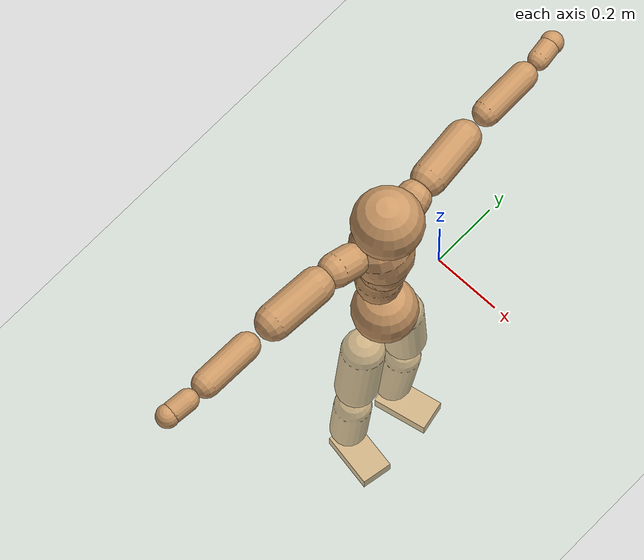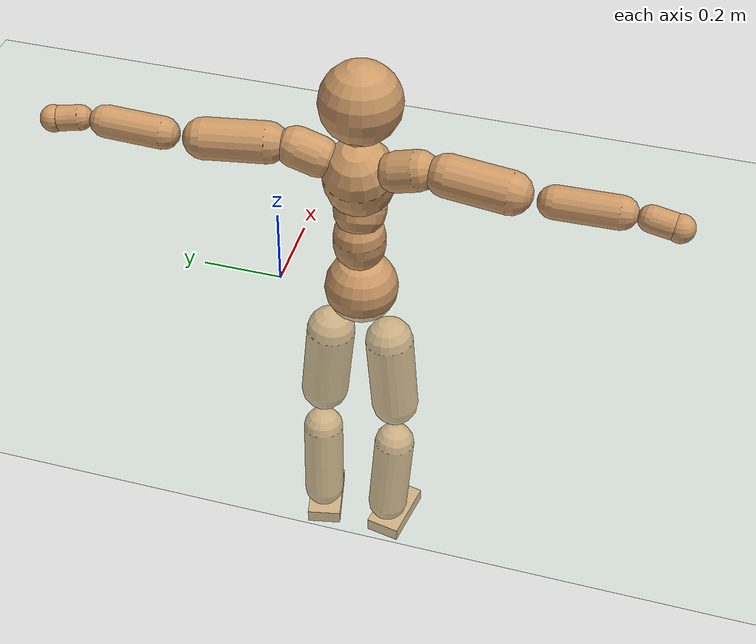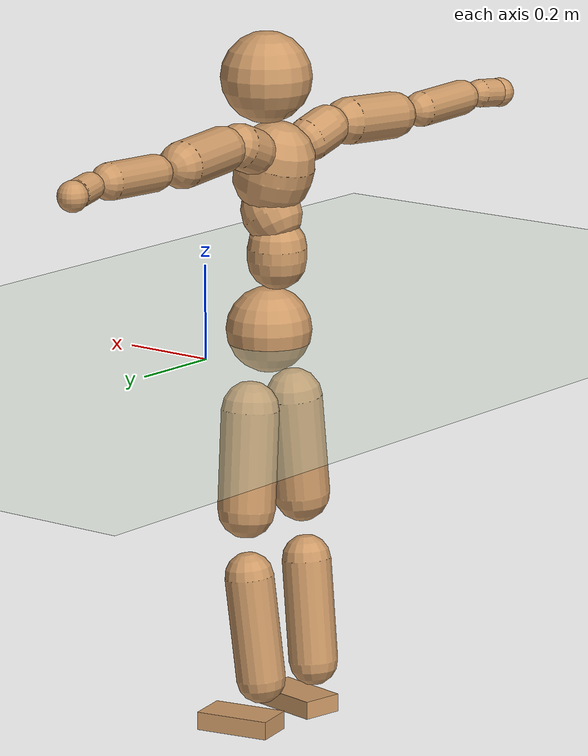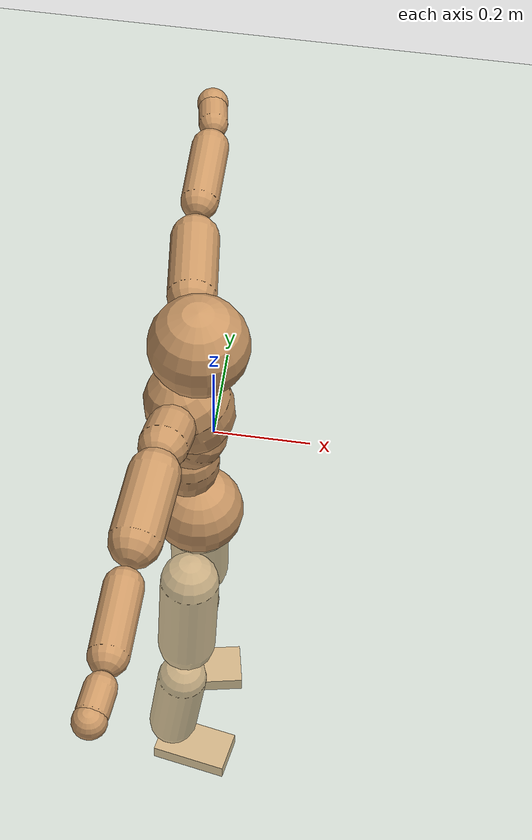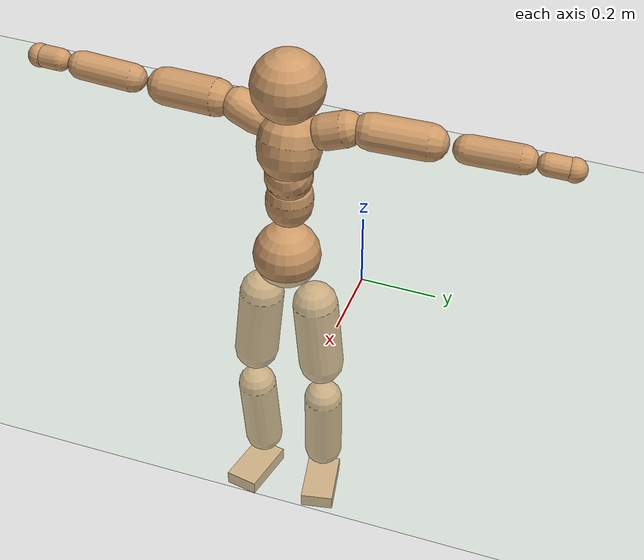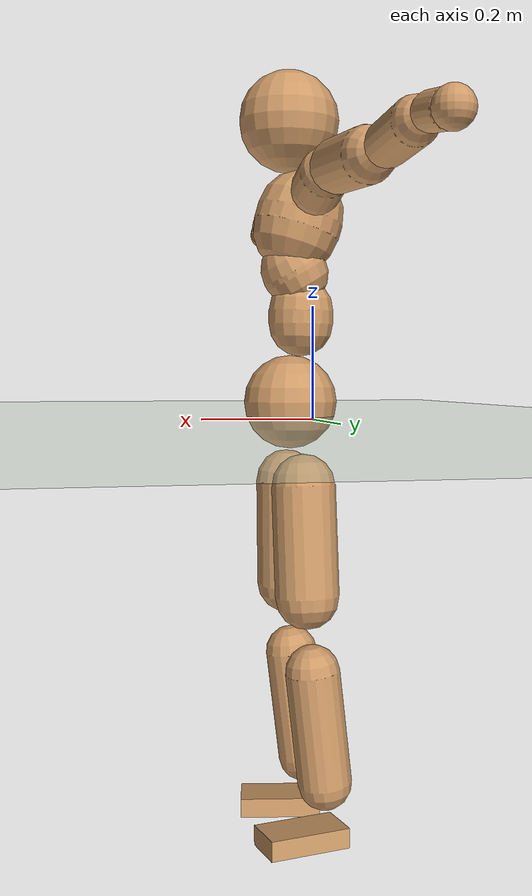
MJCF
<mujoco model="humanoid">
  <compiler coordinate="local"/>
  <default>
    <joint damping="0.0" armature="0.01" stiffness="0.0" limited="true"/>
    <geom conaffinity="1" condim="3" contype="7" margin="0.001" rgba="0.8 0.6 .4 1"/>
  </default>
  <asset>
    <texture type="skybox" builtin="gradient" rgb1=".4 .5 .6" rgb2="0 0 0" width="100" height="100"/>
    <texture builtin="flat" height="1278" mark="cross" markrgb="1 1 1" name="texgeom" random="0.01" rgb1="0.8 0.6 0.4" rgb2="0.8 0.6 0.4" type="cube" width="127"/>
    <texture builtin="checker" height="100" name="texplane" rgb1="0 0 0" rgb2="0.8 0.8 0.8" type="2d" width="100"/>
    <material name="MatPlane" reflectance="0.5" shininess="1" specular="1" texrepeat="60 60" texture="texplane"/>
    <material name="geom" texture="texgeom" texuniform="true"/>
  </asset>
  <worldbody>
    <light cutoff="100" diffuse="1 1 1" dir="-0 0 -1.3" directional="true" exponent="1" pos="0 0 1.3" specular=".1 .1 .1"/>
    <geom conaffinity="1" condim="3" name="floor" pos="0 0 0" rgba="0.8 0.9 0.8 1" size="100 100 .2" type="plane" material="MatPlane"/>
    <body name="Pelvis" pos="-0.0011 -0.2091 0.0264">
      <freejoint name="Pelvis"/>
      <geom type="sphere" contype="1" conaffinity="1" density="500" size="0.0912" pos="0.0000 0.0000 0.0000" name="Pelvis"/>
      <body name="L_Hip" pos="-0.0088 0.0707 -0.0883">
        <joint name="L_Hip_x" type="hinge" pos="0 0 0" axis="1 0 0" stiffness="800" damping="80" armature="0.02" range="-180.0000 180.0000"/>
        <joint name="L_Hip_y" type="hinge" pos="0 0 0" axis="0 1 0" stiffness="800" damping="80" armature="0.02" range="-180.0000 180.0000"/>
        <joint name="L_Hip_z" type="hinge" pos="0 0 0" axis="0 0 1" stiffness="800" damping="80" armature="0.02" range="-180.0000 180.0000"/>
        <geom type="capsule" contype="1" conaffinity="1" density="500" fromto="-0.0012 0.0059 -0.0707 -0.0046 0.0236 -0.2829" size="0.0614" name="L_Hip"/>
        <body name="L_Knee" pos="-0.0058 0.0295 -0.3537">
          <joint name="L_Knee_x" type="hinge" pos="0 0 0" axis="1 0 0" stiffness="800" damping="80" armature="0.02" range="-180.0000 180.0000"/>
          <joint name="L_Knee_y" type="hinge" pos="0 0 0" axis="0 1 0" stiffness="800" damping="80" armature="0.02" range="-180.0000 180.0000"/>
          <joint name="L_Knee_z" type="hinge" pos="0 0 0" axis="0 0 1" stiffness="800" damping="80" armature="0.02" range="-180.0000 180.0000"/>
          <geom type="capsule" contype="1" conaffinity="1" density="500" fromto="-0.0086 -0.0023 -0.0740 -0.0343 -0.0090 -0.2958" size="0.0527" name="L_Knee"/>
          <body name="L_Ankle" pos="-0.0429 -0.0113 -0.3698">
            <joint name="L_Ankle_x" type="hinge" pos="0 0 0" axis="1 0 0" stiffness="800" damping="80" armature="0.02" range="-180.0000 180.0000"/>
            <joint name="L_Ankle_y" type="hinge" pos="0 0 0" axis="0 1 0" stiffness="800" damping="80" armature="0.02" range="-180.0000 180.0000"/>
            <joint name="L_Ankle_z" type="hinge" pos="0 0 0" axis="0 0 1" stiffness="800" damping="80" armature="0.02" range="-180.0000 180.0000"/>
            <geom type="box" contype="1" conaffinity="1" density="500" pos="0.0561 0.0113 -0.0263" size="0.081 0.0449 0.0195" quat="0.9950 0.0000 0.0000 0.0994" name="L_Ankle"/>
            <body name="L_Toe" pos="0.1122 0.0226 -0.0526">
              <joint name="L_Toe_x" type="hinge" pos="0 0 0" axis="1 0 0" stiffness="500" damping="50" armature="0.02" range="-180.0000 180.0000"/>
              <joint name="L_Toe_y" type="hinge" pos="0 0 0" axis="0 1 0" stiffness="500" damping="50" armature="0.02" range="-180.0000 180.0000"/>
              <joint name="L_Toe_z" type="hinge" pos="0 0 0" axis="0 0 1" stiffness="500" damping="50" armature="0.02" range="-180.0000 180.0000"/>
              <geom type="box" contype="1" conaffinity="1" density="500" pos="0.0000 0.0000 0.0256" size="0.0009 0.0023 0.0009" quat="0.9944 0.0000 0.0000 0.1060" name="L_Toe"/>
            </body>
          </body>
        </body>
      </body>
      <body name="R_Hip" pos="-0.0058 -0.0685 -0.0876">
        <joint name="R_Hip_x" type="hinge" pos="0 0 0" axis="1 0 0" stiffness="800" damping="80" armature="0.02" range="-180.0000 180.0000"/>
        <joint name="R_Hip_y" type="hinge" pos="0 0 0" axis="0 1 0" stiffness="800" damping="80" armature="0.02" range="-180.0000 180.0000"/>
        <joint name="R_Hip_z" type="hinge" pos="0 0 0" axis="0 0 1" stiffness="800" damping="80" armature="0.02" range="-180.0000 180.0000"/>
        <geom type="capsule" contype="1" conaffinity="1" density="500" fromto="-0.0017 -0.0069 -0.0720 -0.0068 -0.0275 -0.2880" size="0.0608" name="R_Hip"/>
        <body name="R_Knee" pos="-0.0084 -0.0344 -0.36">
          <joint name="R_Knee_x" type="hinge" pos="0 0 0" axis="1 0 0" stiffness="800" damping="80" armature="0.02" range="-180.0000 180.0000"/>
          <joint name="R_Knee_y" type="hinge" pos="0 0 0" axis="0 1 0" stiffness="800" damping="80" armature="0.02" range="-180.0000 180.0000"/>
          <joint name="R_Knee_z" type="hinge" pos="0 0 0" axis="0 0 1" stiffness="800" damping="80" armature="0.02" range="-180.0000 180.0000"/>
          <geom type="capsule" contype="1" conaffinity="1" density="500" fromto="-0.0083 0.0027 -0.0739 -0.0332 0.0108 -0.2958" size="0.0529" name="R_Knee"/>
          <body name="R_Ankle" pos="-0.0414 0.0135 -0.3697">
            <joint name="R_Ankle_x" type="hinge" pos="0 0 0" axis="1 0 0" stiffness="800" damping="80" armature="0.02" range="-180.0000 180.0000"/>
            <joint name="R_Ankle_y" type="hinge" pos="0 0 0" axis="0 1 0" stiffness="800" damping="80" armature="0.02" range="-180.0000 180.0000"/>
            <joint name="R_Ankle_z" type="hinge" pos="0 0 0" axis="0 0 1" stiffness="800" damping="80" armature="0.02" range="-180.0000 180.0000"/>
            <geom type="box" contype="1" conaffinity="1" density="500" pos="0.0578 -0.0106 -0.0225" size="0.0817 0.0451 0.0193" quat="0.9959 0.0000 0.0000 -0.0909" name="R_Ankle"/>
            <body name="R_Toe" pos="0.1155 -0.0213 -0.0449">
              <joint name="R_Toe_x" type="hinge" pos="0 0 0" axis="1 0 0" stiffness="500" damping="50" armature="0.02" range="-180.0000 180.0000"/>
              <joint name="R_Toe_y" type="hinge" pos="0 0 0" axis="0 1 0" stiffness="500" damping="50" armature="0.02" range="-180.0000 180.0000"/>
              <joint name="R_Toe_z" type="hinge" pos="0 0 0" axis="0 0 1" stiffness="500" damping="50" armature="0.02" range="-180.0000 180.0000"/>
              <geom type="box" contype="1" conaffinity="1" density="500" pos="0.0000 0.0000 0.0241" size="0.0009 0.0022 0.001" quat="0.9967 0.0000 0.0000 -0.0812" name="R_Toe"/>
            </body>
          </body>
        </body>
      </body>
      <body name="Torso" pos="-0.0208 -0.0023 0.1017">
        <joint name="Torso_x" type="hinge" pos="0 0 0" axis="1 0 0" stiffness="1000" damping="100" armature="0.02" range="-180.0000 180.0000"/>
        <joint name="Torso_y" type="hinge" pos="0 0 0" axis="0 1 0" stiffness="1000" damping="100" armature="0.02" range="-180.0000 180.0000"/>
        <joint name="Torso_z" type="hinge" pos="0 0 0" axis="0 0 1" stiffness="1000" damping="100" armature="0.02" range="-180.0000 180.0000"/>
        <geom type="capsule" contype="1" conaffinity="1" density="500" fromto="-0.0009 0.0021 0.0764 -0.0006 0.0014 0.0509" size="0.063519" name="Torso"/>
        <body name="Spine" pos="-0.0016 0.0035 0.1273">
          <joint name="Spine_x" type="hinge" pos="0 0 0" axis="1 0 0" stiffness="1000" damping="100" armature="0.02" range="-180.0000 180.0000"/>
          <joint name="Spine_y" type="hinge" pos="0 0 0" axis="0 1 0" stiffness="1000" damping="100" armature="0.02" range="-180.0000 180.0000"/>
          <joint name="Spine_z" type="hinge" pos="0 0 0" axis="0 0 1" stiffness="1000" damping="100" armature="0.02" range="-180.0000 180.0000"/>
          <geom type="capsule" contype="1" conaffinity="1" density="500" fromto="0.0165 0.0013 0.0287 0.0110 0.0009 0.0192" size="0.063705" name="Spine"/>
          <body name="Chest" pos="0.0275 0.0021 0.0479">
            <joint name="Chest_x" type="hinge" pos="0 0 0" axis="1 0 0" stiffness="1000" damping="100" armature="0.02" range="-180.0000 180.0000"/>
            <joint name="Chest_y" type="hinge" pos="0 0 0" axis="0 1 0" stiffness="1000" damping="100" armature="0.02" range="-180.0000 180.0000"/>
            <joint name="Chest_z" type="hinge" pos="0 0 0" axis="0 0 1" stiffness="1000" damping="100" armature="0.02" range="-180.0000 180.0000"/>
            <geom type="capsule" contype="1" conaffinity="1" density="500" fromto="-0.0251 -0.0007 0.0860 -0.0168 -0.0005 0.0573" size="0.084909" name="Chest"/>
            <body name="Neck" pos="-0.05 -0.0019 0.202">
              <joint name="Neck_x" type="hinge" pos="0 0 0" axis="1 0 0" stiffness="500" damping="50" armature="0.02" range="-180.0000 180.0000"/>
              <joint name="Neck_y" type="hinge" pos="0 0 0" axis="0 1 0" stiffness="500" damping="50" armature="0.02" range="-180.0000 180.0000"/>
              <joint name="Neck_z" type="hinge" pos="0 0 0" axis="0 0 1" stiffness="500" damping="50" armature="0.02" range="-180.0000 180.0000"/>
              <geom type="capsule" contype="1" conaffinity="1" density="500" fromto="0.0094 0.0007 0.0118 0.0378 0.0027 0.0474" size="0.037107" name="Neck"/>
              <body name="Head" pos="0.0472 0.0034 0.0592">
                <joint name="Head_x" type="hinge" pos="0 0 0" axis="1 0 0" stiffness="500" damping="50" armature="0.02" range="-180.0000 180.0000"/>
                <joint name="Head_y" type="hinge" pos="0 0 0" axis="0 1 0" stiffness="500" damping="50" armature="0.02" range="-180.0000 180.0000"/>
                <joint name="Head_z" type="hinge" pos="0 0 0" axis="0 0 1" stiffness="500" damping="50" armature="0.02" range="-180.0000 180.0000"/>
                <geom type="sphere" contype="1" conaffinity="1" density="500" size="0.0965" pos="0.0000 0.0000 0.0000" name="Head"/>
              </body>
            </body>
            <body name="L_Thorax" pos="-0.0354 0.073 0.115">
              <joint name="L_Thorax_x" type="hinge" pos="0 0 0" axis="1 0 0" stiffness="500" damping="50" armature="0.02" range="-180.0000 180.0000"/>
              <joint name="L_Thorax_y" type="hinge" pos="0 0 0" axis="0 1 0" stiffness="500" damping="50" armature="0.02" range="-180.0000 180.0000"/>
              <joint name="L_Thorax_z" type="hinge" pos="0 0 0" axis="0 0 1" stiffness="500" damping="50" armature="0.02" range="-180.0000 180.0000"/>
              <geom type="capsule" contype="1" conaffinity="1" density="500" fromto="-0.0013 0.0167 0.0062 -0.0054 0.0670 0.0249" size="0.0483" name="L_Thorax"/>
              <body name="L_Shoulder" pos="-0.0067 0.0837 0.0311">
                <joint name="L_Shoulder_x" type="hinge" pos="0 0 0" axis="1 0 0" stiffness="500" damping="50" armature="0.02" range="-720.0000 720.0000"/>
                <joint name="L_Shoulder_y" type="hinge" pos="0 0 0" axis="0 1 0" stiffness="500" damping="50" armature="0.02" range="-720.0000 720.0000"/>
                <joint name="L_Shoulder_z" type="hinge" pos="0 0 0" axis="0 0 1" stiffness="500" damping="50" armature="0.02" range="-720.0000 720.0000"/>
                <geom type="capsule" contype="1" conaffinity="1" density="500" fromto="-0.0054 0.0489 -0.0023 -0.0216 0.1956 -0.0090" size="0.0491" name="L_Shoulder"/>
                <body name="L_Elbow" pos="-0.027 0.2445 -0.0113">
                  <joint name="L_Elbow_x" type="hinge" pos="0 0 0" axis="1 0 0" stiffness="500" damping="50" armature="0.02" range="-720.0000 720.0000"/>
                  <joint name="L_Elbow_y" type="hinge" pos="0 0 0" axis="0 1 0" stiffness="500" damping="50" armature="0.02" range="-720.0000 720.0000"/>
                  <joint name="L_Elbow_z" type="hinge" pos="0 0 0" axis="0 0 1" stiffness="500" damping="50" armature="0.02" range="-720.0000 720.0000"/>
                  <geom type="capsule" contype="1" conaffinity="1" density="500" fromto="0.0000 0.0467 0.0017 0.0002 0.1870 0.0067" size="0.0382" name="L_Elbow"/>
                  <body name="L_Wrist" pos="0.0002 0.2337 0.0084">
                    <joint name="L_Wrist_x" type="hinge" pos="0 0 0" axis="1 0 0" stiffness="300" damping="30" armature="0.02" range="-180.0000 180.0000"/>
                    <joint name="L_Wrist_y" type="hinge" pos="0 0 0" axis="0 1 0" stiffness="300" damping="30" armature="0.02" range="-180.0000 180.0000"/>
                    <joint name="L_Wrist_z" type="hinge" pos="0 0 0" axis="0 0 1" stiffness="300" damping="30" armature="0.02" range="-180.0000 180.0000"/>
                    <geom type="capsule" contype="1" conaffinity="1" density="500" fromto="-0.0026 0.0158 -0.0019 -0.0105 0.0632 -0.0077" size="0.0298" name="L_Wrist"/>
                    <body name="L_Hand" pos="-0.0131 0.079 -0.0096">
                      <joint name="L_Hand_x" type="hinge" pos="0 0 0" axis="1 0 0" stiffness="300" damping="30" armature="0.02" range="-180.0000 180.0000"/>
                      <joint name="L_Hand_y" type="hinge" pos="0 0 0" axis="0 1 0" stiffness="300" damping="30" armature="0.02" range="-180.0000 180.0000"/>
                      <joint name="L_Hand_z" type="hinge" pos="0 0 0" axis="0 0 1" stiffness="300" damping="30" armature="0.02" range="-180.0000 180.0000"/>
                      <geom type="sphere" contype="1" conaffinity="1" density="500" size="0.0319" pos="0.0000 0.0000 0.0000" name="L_Hand"/>
                    </body>
                  </body>
                </body>
              </body>
            </body>
            <body name="R_Thorax" pos="-0.0402 -0.0746 0.113">
              <joint name="R_Thorax_x" type="hinge" pos="0 0 0" axis="1 0 0" stiffness="500" damping="50" armature="0.02" range="-180.0000 180.0000"/>
              <joint name="R_Thorax_y" type="hinge" pos="0 0 0" axis="0 1 0" stiffness="500" damping="50" armature="0.02" range="-180.0000 180.0000"/>
              <joint name="R_Thorax_z" type="hinge" pos="0 0 0" axis="0 0 1" stiffness="500" damping="50" armature="0.02" range="-180.0000 180.0000"/>
              <geom type="capsule" contype="1" conaffinity="1" density="500" fromto="-0.0018 -0.0176 0.0064 -0.0074 -0.0703 0.0254" size="0.0474" name="R_Thorax"/>
              <body name="R_Shoulder" pos="-0.0092 -0.0879 0.0318">
                <joint name="R_Shoulder_x" type="hinge" pos="0 0 0" axis="1 0 0" stiffness="500" damping="50" armature="0.02" range="-720.0000 720.0000"/>
                <joint name="R_Shoulder_y" type="hinge" pos="0 0 0" axis="0 1 0" stiffness="500" damping="50" armature="0.02" range="-720.0000 720.0000"/>
                <joint name="R_Shoulder_z" type="hinge" pos="0 0 0" axis="0 0 1" stiffness="500" damping="50" armature="0.02" range="-720.0000 720.0000"/>
                <geom type="capsule" contype="1" conaffinity="1" density="500" fromto="-0.0038 -0.0479 -0.0024 -0.0153 -0.1918 -0.0096" size="0.0502" name="R_Shoulder"/>
                <body name="R_Elbow" pos="-0.0192 -0.2397 -0.012">
                  <joint name="R_Elbow_x" type="hinge" pos="0 0 0" axis="1 0 0" stiffness="500" damping="50" armature="0.02" range="-720.0000 720.0000"/>
                  <joint name="R_Elbow_y" type="hinge" pos="0 0 0" axis="0 1 0" stiffness="500" damping="50" armature="0.02" range="-720.0000 720.0000"/>
                  <joint name="R_Elbow_z" type="hinge" pos="0 0 0" axis="0 0 1" stiffness="500" damping="50" armature="0.02" range="-720.0000 720.0000"/>
                  <geom type="capsule" contype="1" conaffinity="1" density="500" fromto="-0.0007 -0.0480 0.0016 -0.0027 -0.1920 0.0063" size="0.0381" name="R_Elbow"/>
                  <body name="R_Wrist" pos="-0.0034 -0.24 0.0078">
                    <joint name="R_Wrist_x" type="hinge" pos="0 0 0" axis="1 0 0" stiffness="300" damping="30" armature="0.02" range="-180.0000 180.0000"/>
                    <joint name="R_Wrist_y" type="hinge" pos="0 0 0" axis="0 1 0" stiffness="300" damping="30" armature="0.02" range="-180.0000 180.0000"/>
                    <joint name="R_Wrist_z" type="hinge" pos="0 0 0" axis="0 0 1" stiffness="300" damping="30" armature="0.02" range="-180.0000 180.0000"/>
                    <geom type="capsule" contype="1" conaffinity="1" density="500" fromto="-0.0021 -0.0159 -0.0014 -0.0083 -0.0636 -0.0057" size="0.0305" name="R_Wrist"/>
                    <body name="R_Hand" pos="-0.0103 -0.0795 -0.0072">
                      <joint name="R_Hand_x" type="hinge" pos="0 0 0" axis="1 0 0" stiffness="300" damping="30" armature="0.02" range="-180.0000 180.0000"/>
                      <joint name="R_Hand_y" type="hinge" pos="0 0 0" axis="0 1 0" stiffness="300" damping="30" armature="0.02" range="-180.0000 180.0000"/>
                      <joint name="R_Hand_z" type="hinge" pos="0 0 0" axis="0 0 1" stiffness="300" damping="30" armature="0.02" range="-180.0000 180.0000"/>
                      <geom type="sphere" contype="1" conaffinity="1" density="500" size="0.0320" pos="0.0000 0.0000 0.0000" name="R_Hand"/>
                    </body>
                  </body>
                </body>
              </body>
            </body>
          </body>
        </body>
      </body>
    </body>
  </worldbody>
  <actuator>
    <motor name="L_Hip_x" joint="L_Hip_x" gear="500"/>
    <motor name="L_Hip_y" joint="L_Hip_y" gear="500"/>
    <motor name="L_Hip_z" joint="L_Hip_z" gear="500"/>
    <motor name="L_Knee_x" joint="L_Knee_x" gear="500"/>
    <motor name="L_Knee_y" joint="L_Knee_y" gear="500"/>
    <motor name="L_Knee_z" joint="L_Knee_z" gear="500"/>
    <motor name="L_Ankle_x" joint="L_Ankle_x" gear="500"/>
    <motor name="L_Ankle_y" joint="L_Ankle_y" gear="500"/>
    <motor name="L_Ankle_z" joint="L_Ankle_z" gear="500"/>
    <motor name="L_Toe_x" joint="L_Toe_x" gear="500"/>
    <motor name="L_Toe_y" joint="L_Toe_y" gear="500"/>
    <motor name="L_Toe_z" joint="L_Toe_z" gear="500"/>
    <motor name="R_Hip_x" joint="R_Hip_x" gear="500"/>
    <motor name="R_Hip_y" joint="R_Hip_y" gear="500"/>
    <motor name="R_Hip_z" joint="R_Hip_z" gear="500"/>
    <motor name="R_Knee_x" joint="R_Knee_x" gear="500"/>
    <motor name="R_Knee_y" joint="R_Knee_y" gear="500"/>
    <motor name="R_Knee_z" joint="R_Knee_z" gear="500"/>
    <motor name="R_Ankle_x" joint="R_Ankle_x" gear="500"/>
    <motor name="R_Ankle_y" joint="R_Ankle_y" gear="500"/>
    <motor name="R_Ankle_z" joint="R_Ankle_z" gear="500"/>
    <motor name="R_Toe_x" joint="R_Toe_x" gear="500"/>
    <motor name="R_Toe_y" joint="R_Toe_y" gear="500"/>
    <motor name="R_Toe_z" joint="R_Toe_z" gear="500"/>
    <motor name="Torso_x" joint="Torso_x" gear="500"/>
    <motor name="Torso_y" joint="Torso_y" gear="500"/>
    <motor name="Torso_z" joint="Torso_z" gear="500"/>
    <motor name="Spine_x" joint="Spine_x" gear="500"/>
    <motor name="Spine_y" joint="Spine_y" gear="500"/>
    <motor name="Spine_z" joint="Spine_z" gear="500"/>
    <motor name="Chest_x" joint="Chest_x" gear="500"/>
    <motor name="Chest_y" joint="Chest_y" gear="500"/>
    <motor name="Chest_z" joint="Chest_z" gear="500"/>
    <motor name="Neck_x" joint="Neck_x" gear="500"/>
    <motor name="Neck_y" joint="Neck_y" gear="500"/>
    <motor name="Neck_z" joint="Neck_z" gear="500"/>
    <motor name="Head_x" joint="Head_x" gear="500"/>
    <motor name="Head_y" joint="Head_y" gear="500"/>
    <motor name="Head_z" joint="Head_z" gear="500"/>
    <motor name="L_Thorax_x" joint="L_Thorax_x" gear="500"/>
    <motor name="L_Thorax_y" joint="L_Thorax_y" gear="500"/>
    <motor name="L_Thorax_z" joint="L_Thorax_z" gear="500"/>
    <motor name="L_Shoulder_x" joint="L_Shoulder_x" gear="500"/>
    <motor name="L_Shoulder_y" joint="L_Shoulder_y" gear="500"/>
    <motor name="L_Shoulder_z" joint="L_Shoulder_z" gear="500"/>
    <motor name="L_Elbow_x" joint="L_Elbow_x" gear="500"/>
    <motor name="L_Elbow_y" joint="L_Elbow_y" gear="500"/>
    <motor name="L_Elbow_z" joint="L_Elbow_z" gear="500"/>
    <motor name="L_Wrist_x" joint="L_Wrist_x" gear="500"/>
    <motor name="L_Wrist_y" joint="L_Wrist_y" gear="500"/>
    <motor name="L_Wrist_z" joint="L_Wrist_z" gear="500"/>
    <motor name="L_Hand_x" joint="L_Hand_x" gear="500"/>
    <motor name="L_Hand_y" joint="L_Hand_y" gear="500"/>
    <motor name="L_Hand_z" joint="L_Hand_z" gear="500"/>
    <motor name="R_Thorax_x" joint="R_Thorax_x" gear="500"/>
    <motor name="R_Thorax_y" joint="R_Thorax_y" gear="500"/>
    <motor name="R_Thorax_z" joint="R_Thorax_z" gear="500"/>
    <motor name="R_Shoulder_x" joint="R_Shoulder_x" gear="500"/>
    <motor name="R_Shoulder_y" joint="R_Shoulder_y" gear="500"/>
    <motor name="R_Shoulder_z" joint="R_Shoulder_z" gear="500"/>
    <motor name="R_Elbow_x" joint="R_Elbow_x" gear="500"/>
    <motor name="R_Elbow_y" joint="R_Elbow_y" gear="500"/>
    <motor name="R_Elbow_z" joint="R_Elbow_z" gear="500"/>
    <motor name="R_Wrist_x" joint="R_Wrist_x" gear="500"/>
    <motor name="R_Wrist_y" joint="R_Wrist_y" gear="500"/>
    <motor name="R_Wrist_z" joint="R_Wrist_z" gear="500"/>
    <motor name="R_Hand_x" joint="R_Hand_x" gear="500"/>
    <motor name="R_Hand_y" joint="R_Hand_y" gear="500"/>
    <motor name="R_Hand_z" joint="R_Hand_z" gear="500"/>
  </actuator>
  <contact>
    <exclude body1="Torso" body2="Chest"/>
    <exclude body1="Head" body2="Chest"/>
    <exclude body1="R_Knee" body2="R_Toe"/>
    <exclude body1="R_Knee" body2="L_Ankle"/>
    <exclude body1="R_Knee" body2="L_Toe"/>
    <exclude body1="L_Knee" body2="L_Toe"/>
    <exclude body1="L_Knee" body2="R_Ankle"/>
    <exclude body1="L_Knee" body2="R_Toe"/>
    <exclude body1="L_Shoulder" body2="Chest"/>
    <exclude body1="R_Shoulder" body2="Chest"/>
  </contact>
  <sensor/>
  <size njmax="700" nconmax="700"/>
</mujoco>
